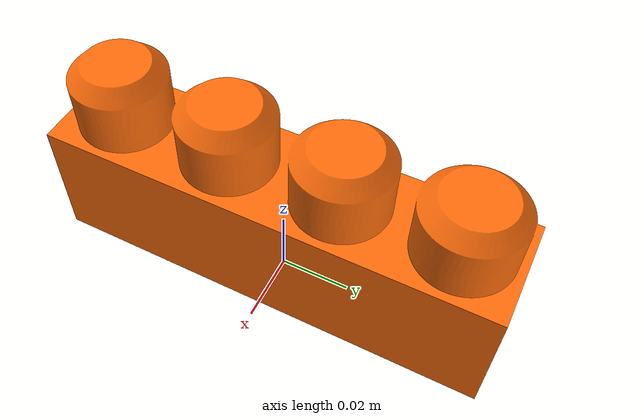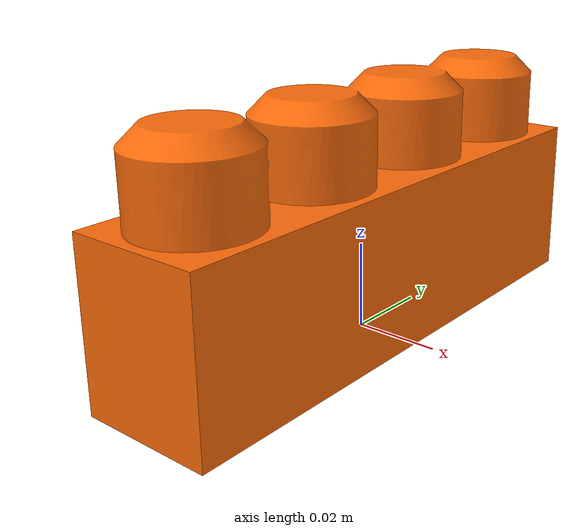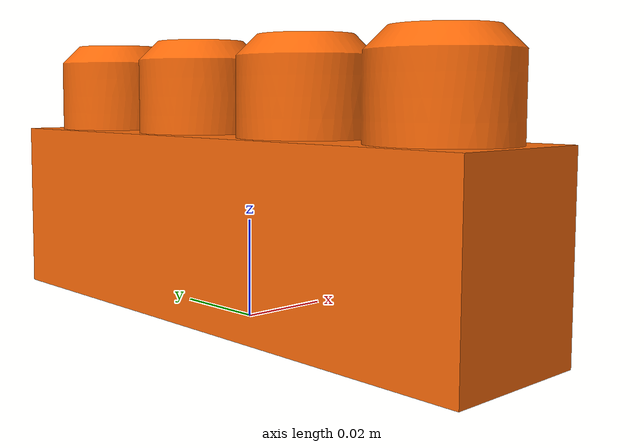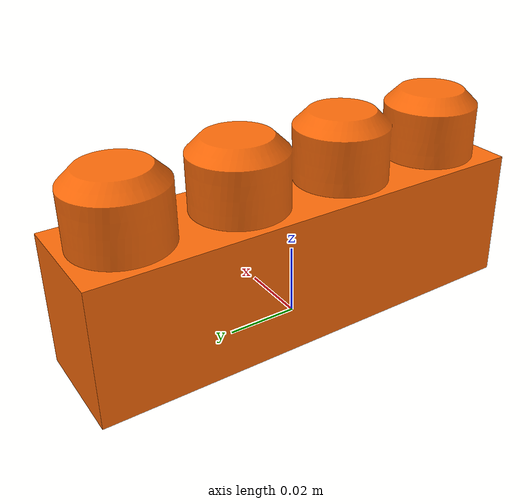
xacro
<?xml version="1.0"?>

<robot xmlns:xacro="http://www.ros.org/wiki/xacro" name="$(arg block_name)">
  <xacro:arg name="block_name" default="block"/>

  <material name="Orange">
    <color rgba="${255/255} ${108/255} ${10/255} 1.0"/>
  </material>

  <link name="block">
    <visual>
      <geometry>
        <mesh filename="$(find ur5lego)/blocks_description/meshes/X1-Y4-Z2.dae"/>
      </geometry>
      <material name="Orange"/>
    </visual>
    <collision>
      <geometry>
        <mesh filename="$(find ur5lego)/blocks_description/meshes/X1-Y4-Z2.dae"/>
      </geometry>
    </collision>
    <inertial>
      <mass value="0.1"/>
      <origin rpy="0 0 0" xyz="0.0 0.0 0.0"/>
      <inertia ixx="0.0" ixy="0.0" ixz="0.0" iyy="0.0" iyz="0.0" izz="0.0"/>
    </inertial>
  </link>

  <gazebo reference="block">
    <material>Gazebo/Blue</material>
  </gazebo>
</robot>
